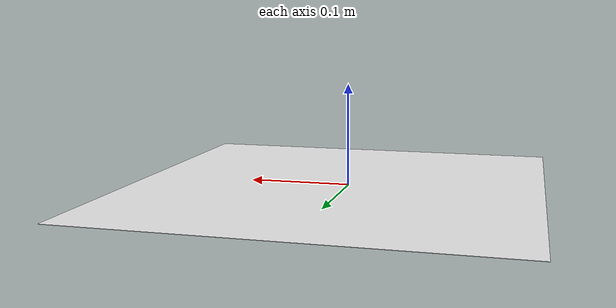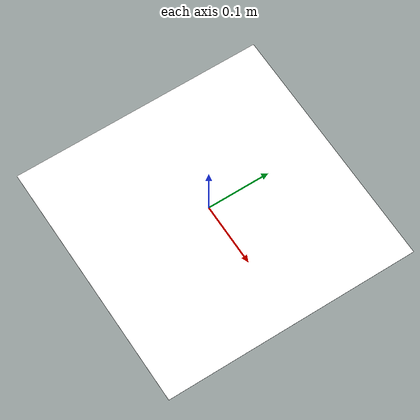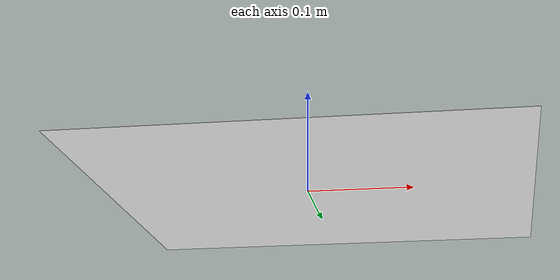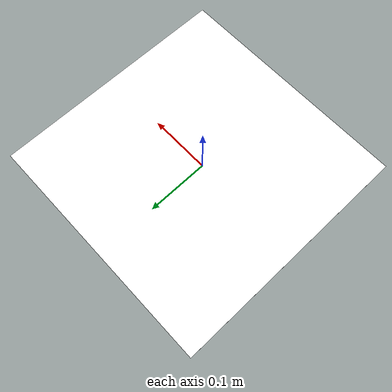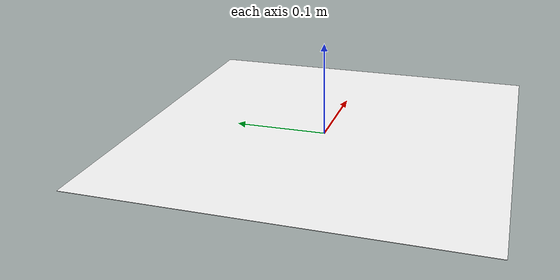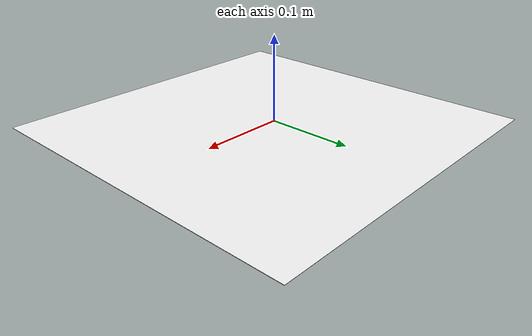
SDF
<?xml version="1.0"?>
<sdf version='1.8'>
  <!-- Single rigid panel with small physical thickness to avoid z-fighting -->
  <model name='apriltag_panel'>
    <static>true</static>
    <link name='panel'>
      <inertial><mass>0.05</mass></inertial>
      <!-- Give the panel a bit of thickness -->
      <collision name='body_col'>
        <geometry>
          <box>
            <size>0.02 0.4 0.4</size>
          </box>
        </geometry>
      </collision>

      <!-- Front tag surface slightly in front of the body to avoid artifacts -->
      <visual name='front_vis'>
        <pose>0.011 0 0 0 0 0</pose>
        <cast_shadows>false</cast_shadows>
        <geometry>
          <plane>
            <size>0.4 0.4</size>
          </plane>
        </geometry>
        <material>
          <double_sided>false</double_sided>
          <transparency>0.0</transparency>
          <ambient>1 1 1 1</ambient>
          <diffuse>1 1 1 1</diffuse>
          <pbr>
            <metal>
              <albedo_map>textures/apriltags/tag36_11_00000.png</albedo_map>
              <metalness>0.0</metalness>
              <roughness>0.8</roughness>
            </metal>
          </pbr>
        </material>
      </visual>

    </link>
  </model>
</sdf>
